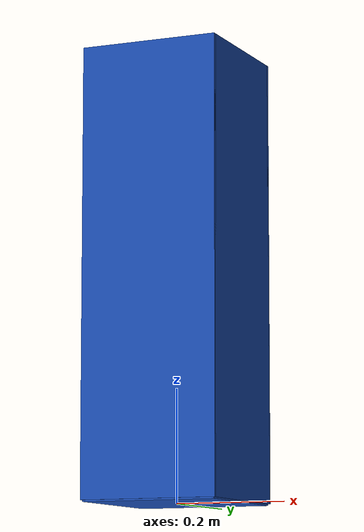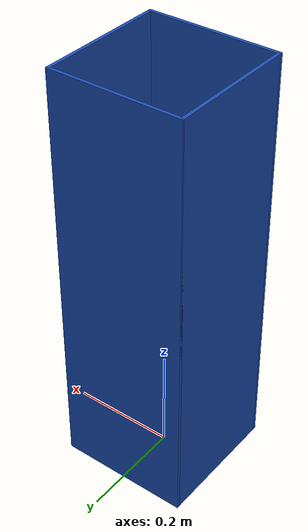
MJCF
<mujoco model="recycle_bin">
  <compiler angle="radian"/>

  <asset>
    <material name="bin_blue" rgba="0.1 0.3 0.7 1" specular="0.3" shininess="0.5"/>
  </asset>

  <worldbody>
    <!-- Bin is centered at its base, walls extend upward -->
    <!-- Height: 0.80m (floor-standing, reachable by robot) -->
    <body name="recycle_bin" pos="0 0 0">
      <freejoint name="recycle_bin_joint"/>
      <!-- Bottom -->
      <geom name="bin_bottom" type="box" size="0.122 0.122 0.003" pos="0 0 0.003"
            material="bin_blue" friction="0.8 0.01 0.001" contype="1" conaffinity="1"/>
      <!-- Front wall -->
      <geom name="bin_front" type="box" size="0.125 0.003 0.397" pos="0 0.122 0.40"
            material="bin_blue" friction="0.8 0.01 0.001" contype="1" conaffinity="1"/>
      <!-- Back wall -->
      <geom name="bin_back" type="box" size="0.125 0.003 0.397" pos="0 -0.122 0.40"
            material="bin_blue" friction="0.8 0.01 0.001" contype="1" conaffinity="1"/>
      <!-- Left wall -->
      <geom name="bin_left" type="box" size="0.003 0.122 0.397" pos="-0.122 0 0.40"
            material="bin_blue" friction="0.8 0.01 0.001" contype="1" conaffinity="1"/>
      <!-- Right wall -->
      <geom name="bin_right" type="box" size="0.003 0.122 0.397" pos="0.122 0 0.40"
            material="bin_blue" friction="0.8 0.01 0.001" contype="1" conaffinity="1"/>
    </body>
  </worldbody>
</mujoco>
